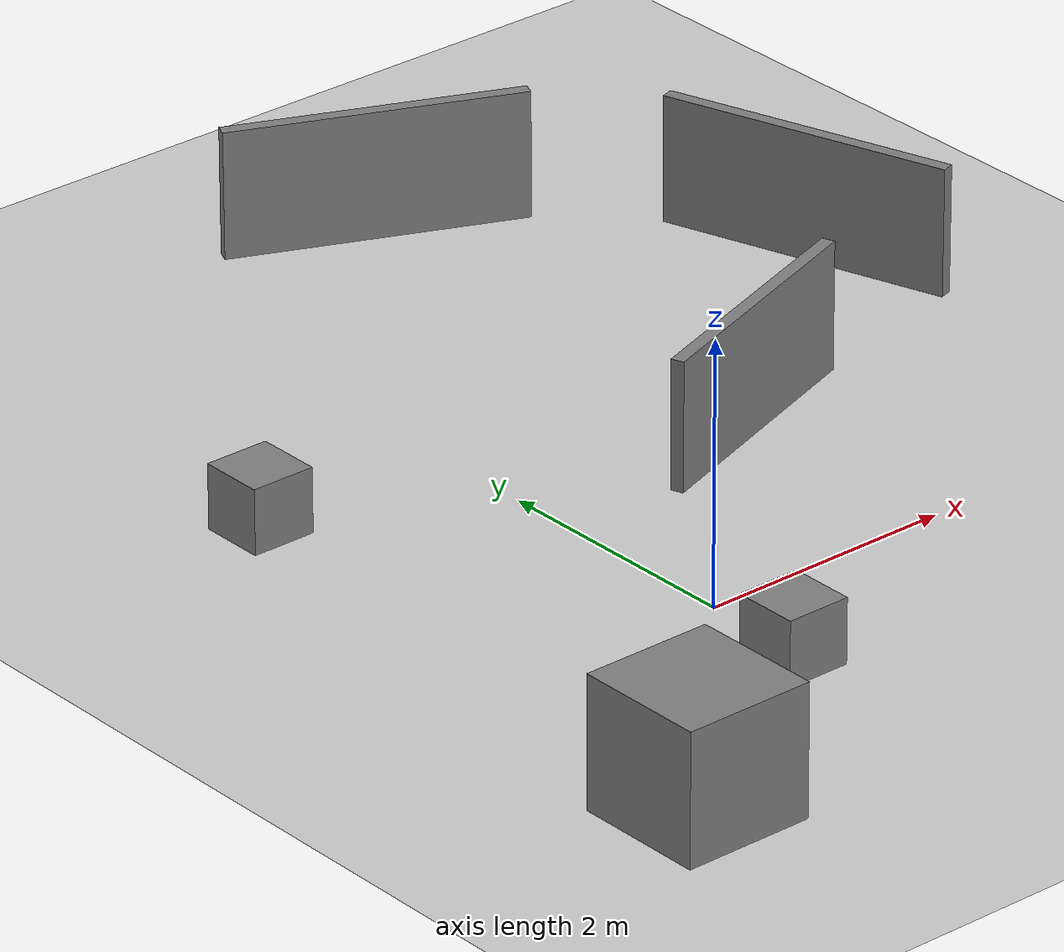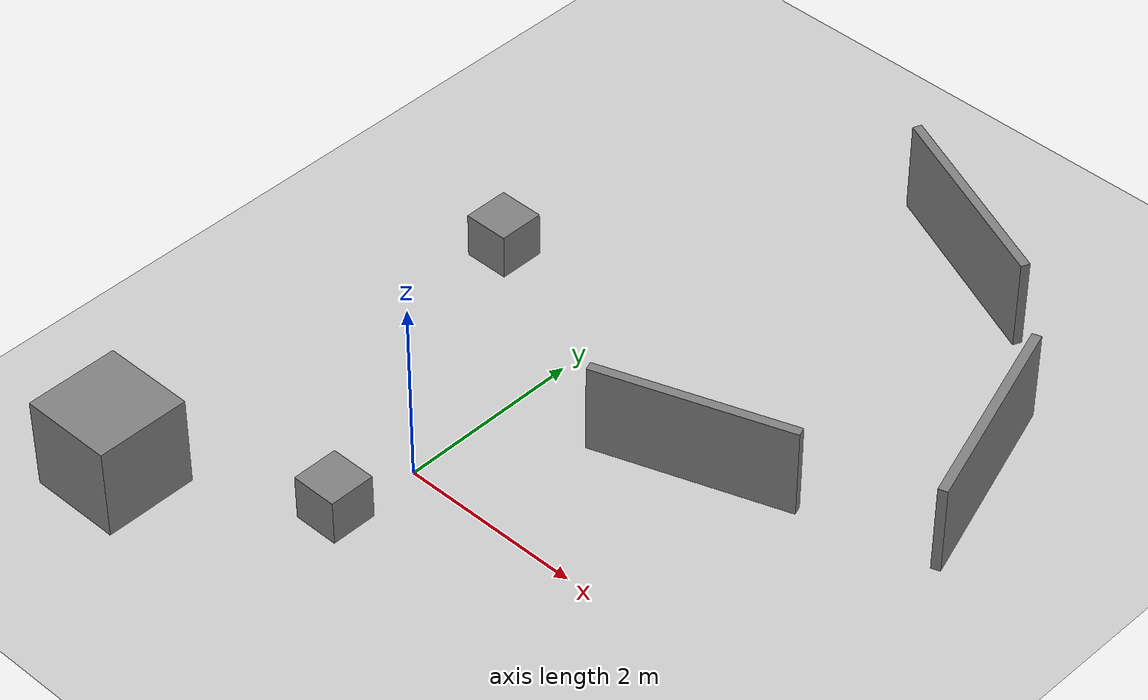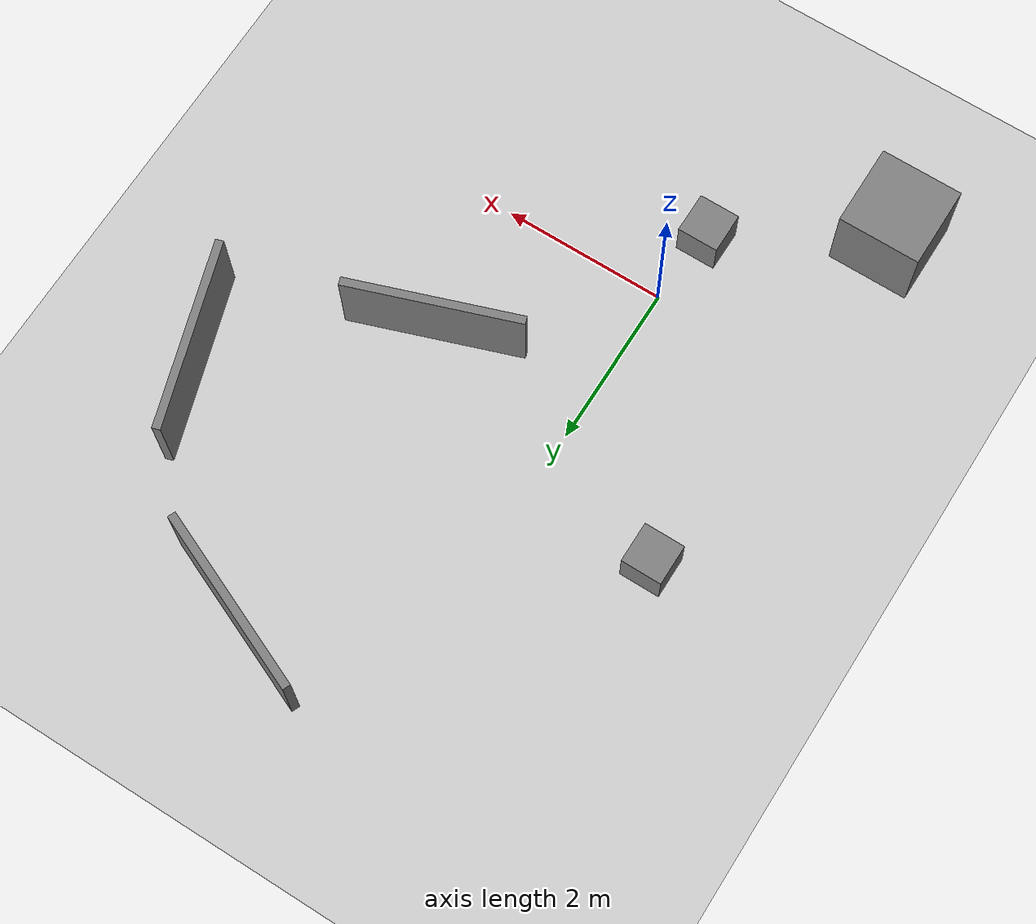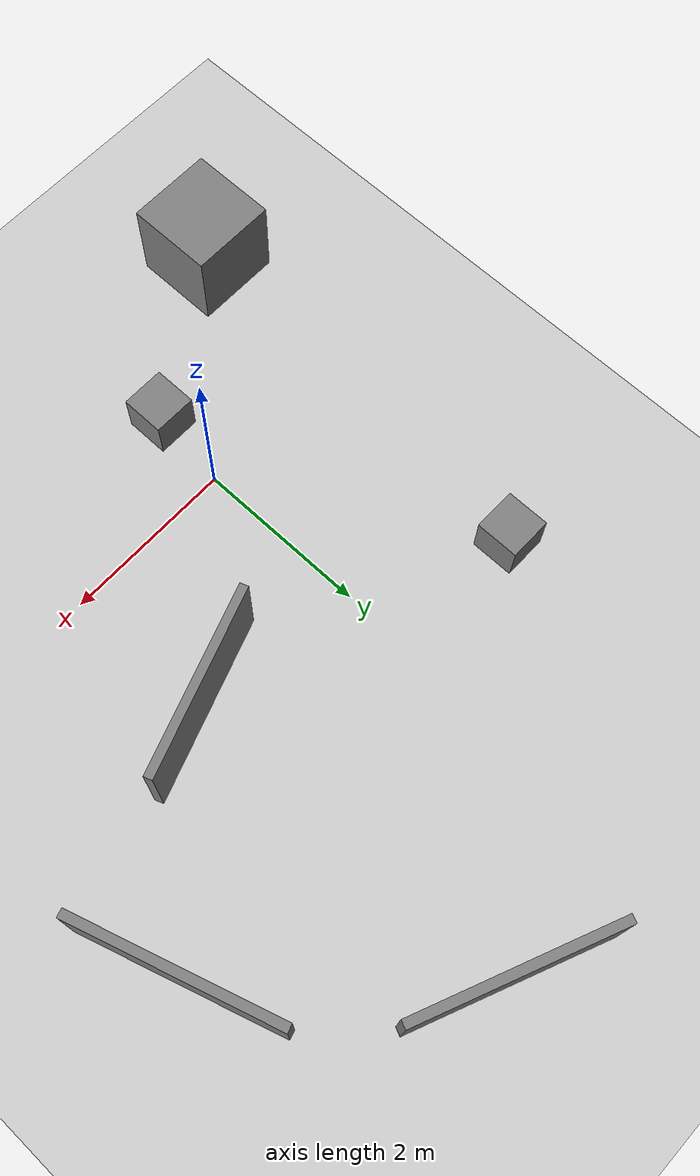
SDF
<?xml version='1.0' encoding='utf-8'?>
<sdf version="1.8">
  <world name="theWorld_2">
    <physics name="1ms" type="ignored">
      <max_step_size>0.001</max_step_size>
      <real_time_factor>1</real_time_factor>
      <real_time_update_rate>1000</real_time_update_rate>
    </physics>
    <plugin name="ignition::gazebo::systems::Physics" filename="ignition-gazebo-physics-system" />
    <plugin name="ignition::gazebo::systems::UserCommands" filename="ignition-gazebo-user-commands-system" />
    <plugin name="ignition::gazebo::systems::SceneBroadcaster" filename="ignition-gazebo-scene-broadcaster-system" />
    <plugin name="ignition::gazebo::systems::Contact" filename="ignition-gazebo-contact-system" />
    <gravity>0 0 -9.8</gravity>
    <magnetic_field>6e-06 2.3e-05 -4.2e-05</magnetic_field>
    <atmosphere type="adiabatic" />
    <scene>
      <ambient>0.4 0.4 0.4 1</ambient>
      <background>0.7 0.7 0.7 1</background>
      <shadows>true</shadows>
    </scene>
    <model name="ground_plane">
      <static>true</static>
      <link name="link">
        <collision name="collision">
          <geometry>
            <plane>
              <normal>0 0 1</normal>
              <size>100 100</size>
            </plane>
          </geometry>
          <surface>
            <friction>
              <ode />
            </friction>
            <bounce />
            <contact />
          </surface>
        </collision>
        <visual name="visual">
          <geometry>
            <plane>
              <normal>0 0 1</normal>
              <size>100 100</size>
            </plane>
          </geometry>
          <material>
            <ambient>0.8 0.8 0.8 1</ambient>
            <diffuse>0.8 0.8 0.8 1</diffuse>
            <specular>0.8 0.8 0.8 1</specular>
          </material>
        </visual>
        <pose>0 0 0 0 0 0</pose>
        <inertial>
          <pose>0 0 0 0 0 0</pose>
          <mass>1</mass>
          <inertia>
            <ixx>1</ixx>
            <ixy>0</ixy>
            <ixz>0</ixz>
            <iyy>1</iyy>
            <iyz>0</iyz>
            <izz>1</izz>
          </inertia>
        </inertial>
        <enable_wind>false</enable_wind>
      </link>
      <pose>0 0 0 0 0 0</pose>
      <self_collide>false</self_collide>
    </model>
    <light name="sun" type="directional">
      <pose>0 0 10 0 0 0</pose>
      <cast_shadows>true</cast_shadows>
      <intensity>1</intensity>
      <direction>-0.5 0.1 -0.9</direction>
      <diffuse>0.8 0.8 0.8 1</diffuse>
      <specular>0.2 0.2 0.2 1</specular>
      <attenuation>
        <range>1000</range>
        <linear>0.01</linear>
        <constant>0.9</constant>
        <quadratic>0.001</quadratic>
      </attenuation>
      <spot>
        <inner_angle>0</inner_angle>
        <outer_angle>0</outer_angle>
        <falloff>0</falloff>
      </spot>
    </light>
  <model name="wall_2">
            <static>true</static>
            <type>wall</type>
            <pose>1.900000 1.750000 0.500000 0 0 0.336675</pose>
            <link name="link">
                <collision name="collision">
                    <geometry><box><size>2.118962 0.100000 1.000000</size></box></geometry>
                </collision>
                <visual name="visual">
                    <geometry><box><size>2.118962 0.100000 1.000000</size></box></geometry>
                    <material>
                        <diffuse>0.5 0.5 0.5 1</diffuse>
                    </material>
                </visual>
            </link>
        </model><model name="wall_3">
            <static>true</static>
            <type>wall</type>
            <pose>3.950000 3.500000 0.500000 0 0 1.878849</pose>
            <link name="link">
                <collision name="collision">
                    <geometry><box><size>2.308679 0.100000 1.000000</size></box></geometry>
                </collision>
                <visual name="visual">
                    <geometry><box><size>2.308679 0.100000 1.000000</size></box></geometry>
                    <material>
                        <diffuse>0.5 0.5 0.5 1</diffuse>
                    </material>
                </visual>
            </link>
        </model><model name="wall_4">
            <static>true</static>
            <type>wall</type>
            <pose>1.850000 5.750000 0.500000 0 0 2.736701</pose>
            <link name="link">
                <collision name="collision">
                    <geometry><box><size>2.284732 0.100000 1.000000</size></box></geometry>
                </collision>
                <visual name="visual">
                    <geometry><box><size>2.284732 0.100000 1.000000</size></box></geometry>
                    <material>
                        <diffuse>0.5 0.5 0.5 1</diffuse>
                    </material>
                </visual>
            </link>
        </model><model name="box_6">
            <static>false</static>
            <type>box</type>
            <pose>-1.600000 2.800000 0.250000 0 0 0</pose>
            <link name="link">
                <collision name="collision">
                    <geometry><box><size>0.500000 0.500000 0.500000</size></box></geometry>
                </collision>
                <visual name="visual">
                    <geometry><box><size>0.500000 0.500000 0.500000</size></box></geometry>
                    <material>
                        <diffuse>0.5 0.5 0.5 1</diffuse>
                    </material>
                </visual>
            </link>
        </model><model name="box_5">
            <static>false</static>
            <type>box</type>
            <pose>-0.100000 -0.900000 0.250000 0 0 0</pose>
            <link name="link">
                <collision name="collision">
                    <geometry><box><size>0.500000 0.500000 0.500000</size></box></geometry>
                </collision>
                <visual name="visual">
                    <geometry><box><size>0.500000 0.500000 0.500000</size></box></geometry>
                    <material>
                        <diffuse>0.5 0.5 0.5 1</diffuse>
                    </material>
                </visual>
            </link>
        </model><model name="box_7">
            <static>true</static>
            <type>box</type>
            <pose>-1.900000 -2.000000 0.500000 0 0 0</pose>
            <link name="link">
                <collision name="collision">
                    <geometry><box><size>1.000000 1.000000 1.000000</size></box></geometry>
                </collision>
                <visual name="visual">
                    <geometry><box><size>1.000000 1.000000 1.000000</size></box></geometry>
                    <material>
                        <diffuse>0.5 0.5 0.5 1</diffuse>
                    </material>
                </visual>
            </link>
        </model></world>
</sdf>
